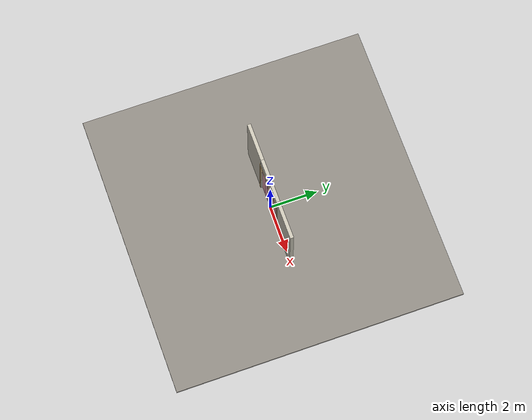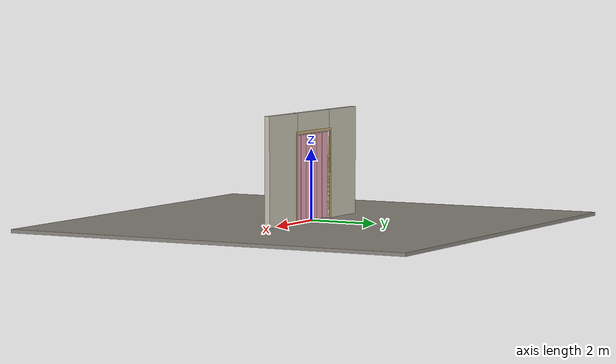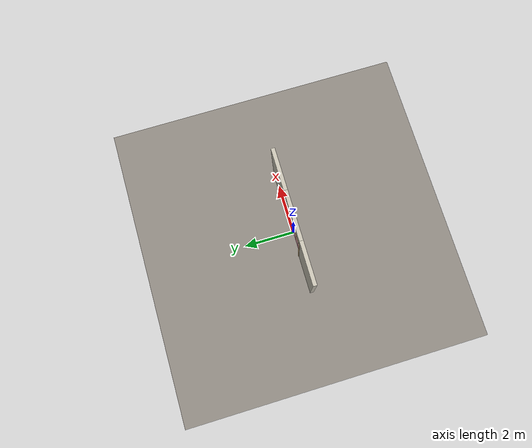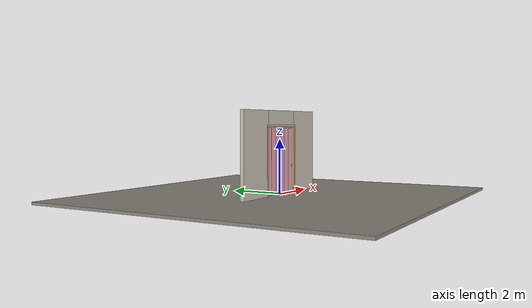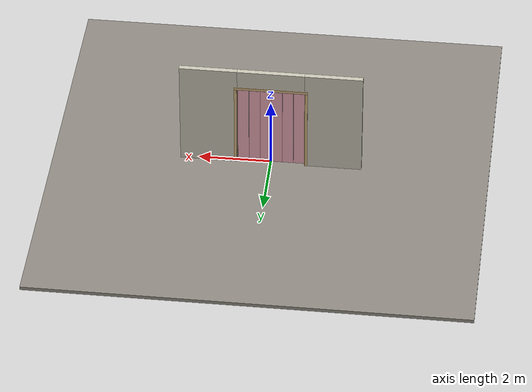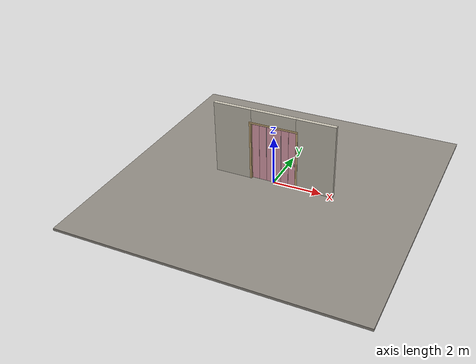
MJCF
<?xml version="1.0" ?>
<mujoco model="db0292_accordion_full">
  <compiler angle="radian" meshdir="../../hardware" texturedir="../../textures" autolimits="true" inertiafromgeom="false"/>
  <option timestep="0.002" integrator="implicitfast" cone="elliptic" impratio="10" noslip_iterations="3">
    <flag multiccd="enable"/>
  </option>
  <size memory="16M"/>
  <default>
    <geom condim="4" solref="0.005 1" solimp="0.95 0.99 0.001"/>
    <joint solreflimit="0.005 1" solimplimit="0.95 0.99 0.001"/>
    <tendon solreflimit="0.005 1"/>
    <equality solref="0.002 1"/>
  </default>
  <visual>
    <headlight ambient="0.4 0.4 0.4" diffuse="0.7 0.7 0.7" specular="0.2 0.2 0.2"/>
    <quality shadowsize="4096"/>
    <map znear="0.01" zfar="60"/>
  </visual>
  <asset>
    <material name="mat_floor" rgba="0.55 0.53 0.5 1" specular="0.2" shininess="0.15" reflectance="0"/>
    <material name="mat_wall" rgba="0.78 0.76 0.7 1" specular="0.2" shininess="0.1" reflectance="0"/>
    <material name="mat_frame" rgba="0.82 0.7 0.5 1" specular="0.2" shininess="0.45" reflectance="0"/>
    <material name="mat_track" rgba="0.8 0.81 0.83 1" specular="0.8" shininess="0.6" reflectance="0.4"/>
    <material name="mat_hinge" rgba="0.65 0.66 0.68 1" specular="0.74" shininess="0.5" reflectance="0.36"/>
    <material name="mat_panel_0_0" rgba="0.9 0.65 0.7 1" specular="0.2" shininess="0.57" reflectance="0"/>
    <material name="mat_panel_0_1" rgba="0.9 0.65 0.7 1" specular="0.2" shininess="0.57" reflectance="0"/>
    <material name="mat_panel_0_2" rgba="0.9 0.65 0.7 1" specular="0.2" shininess="0.57" reflectance="0"/>
    <material name="mat_panel_0_3" rgba="0.9 0.65 0.7 1" specular="0.2" shininess="0.57" reflectance="0"/>
    <material name="mat_panel_0_4" rgba="0.9 0.65 0.7 1" specular="0.2" shininess="0.57" reflectance="0"/>
    <material name="mat_panel_0_5" rgba="0.9 0.65 0.7 1" specular="0.2" shininess="0.57" reflectance="0"/>
    <material name="mat_op_nickel_satin" rgba="0.72 0.7 0.66 1" specular="0.8" shininess="0.65" reflectance="0.4"/>
    <texture name="skybox" type="skybox" builtin="gradient" rgb1="0.6 0.7 0.85" rgb2="0.9 0.92 0.95" width="256" height="256"/>
  </asset>
  <worldbody>
    <light name="sun" pos="1.5 -2.5 4" dir="-0.3 0.5 -0.8" directional="true" diffuse="0.8 0.8 0.8" specular="0.3 0.3 0.3" castshadow="true"/>
    <light name="fill" pos="-1.5 2.5 3" dir="0.3 -0.5 -0.7" directional="true" diffuse="0.35 0.35 0.4" castshadow="false"/>
    <camera name="robot_view" pos="0 -2.926563 2.046937" xyaxes="1 0 0 0 0.26963 0.962964" fovy="52"/>
    <camera name="far_view" pos="0 2.926563 2.046937" xyaxes="-1 0 0 0 -0.26963 0.962964" fovy="52"/>
    <camera name="iso" pos="2.224187 -2.458313 2.515188" xyaxes="0.741536 0.670913 0 -0.242917 0.268487 0.932151" fovy="46"/>
    <camera name="detail_handle" pos="1.0345 -0.806 1.28" xyaxes="0.97561 0.219512 0 -0.070934 0.315262 0.94635" fovy="38"/>
    <geom name="floor" type="box" size="6 6 0.05" pos="0 0 -0.05" material="mat_floor" group="0" contype="1" conaffinity="1" friction="0.8 0.005 0.0001" density="2400"/>
    <geom name="wall_left" type="box" size="0.78975 0.0725 1.5275" pos="-1.71025 0 1.5275" material="mat_wall" group="0" contype="1" conaffinity="1" friction="0.6 0.005 0.0001" density="800"/>
    <geom name="wall_right" type="box" size="0.78975 0.0725 1.5275" pos="1.71025 0 1.5275" material="mat_wall" group="0" contype="1" conaffinity="1" friction="0.6 0.005 0.0001" density="800"/>
    <geom name="wall_header" type="box" size="0.9205 0.0725 0.3" pos="0 0 2.755" material="mat_wall" group="0" contype="1" conaffinity="1" friction="0.6 0.005 0.0001" density="800"/>
    <geom name="jamb_hinge" type="box" size="0.0095 0.0725 1.2275" pos="-0.93 0 1.2275" material="mat_frame" group="0" contype="1" conaffinity="1" friction="0.6 0.005 0.0001" density="400"/>
    <geom name="jamb_strike" type="box" size="0.0095 0.0725 1.2275" pos="0.93 0 1.2275" material="mat_frame" group="0" contype="1" conaffinity="1" friction="0.6 0.005 0.0001" density="400"/>
    <geom name="stud_strike" type="box" size="0.015 0.0725 1.2275" pos="0.9545 0 1.2275" material="mat_wall" group="0" contype="1" conaffinity="1" friction="0.6 0.005 0.0001" density="500"/>
    <geom name="jamb_head" type="box" size="0.9545 0.0725 0.0095" pos="0.015 0 2.4645" material="mat_frame" group="0" contype="1" conaffinity="1" friction="0.6 0.005 0.0001" density="400"/>
    <geom name="head_stud" type="box" size="0.9545 0.0725 0.015" pos="0.015 0 2.489" material="mat_wall" group="0" contype="1" conaffinity="1" friction="0.6 0.005 0.0001" density="500"/>
    <geom name="casing_l_n" type="box" size="0.035 0.008 1.237" pos="-0.9695 -0.0805 1.2275" material="mat_frame" group="2" contype="0" conaffinity="0" density="400"/>
    <geom name="casing_r_n" type="box" size="0.035 0.008 1.237" pos="0.9695 -0.0805 1.2275" material="mat_frame" group="2" contype="0" conaffinity="0" density="400"/>
    <geom name="casing_h_n" type="box" size="1.0045 0.008 0.035" pos="0 -0.0805 2.504" material="mat_frame" group="2" contype="0" conaffinity="0" density="400"/>
    <geom name="casing_l_p" type="box" size="0.035 0.008 1.237" pos="-0.9695 0.0805 1.2275" material="mat_frame" group="2" contype="0" conaffinity="0" density="400"/>
    <geom name="casing_r_p" type="box" size="0.035 0.008 1.237" pos="0.9695 0.0805 1.2275" material="mat_frame" group="2" contype="0" conaffinity="0" density="400"/>
    <geom name="casing_h_p" type="box" size="1.0045 0.008 0.035" pos="0 0.0805 2.504" material="mat_frame" group="2" contype="0" conaffinity="0" density="400"/>
    <geom name="fold_track" type="box" size="0.9205 0.02 0.015" pos="0 0 2.44" material="mat_track" group="1" contype="0" conaffinity="0" density="2700"/>
    <site name="approach_point" pos="0 -1.5 0" quat="1 0 0 0" size="0.05" rgba="0.2 0.9 0.2 0.5" group="4"/>
    <site name="goal_point" pos="0 1.5 0" quat="1 0 0 0" size="0.05" rgba="0.2 0.9 0.2 0.5" group="4"/>
    <site name="door_plane_center" pos="0 0 1.2275" quat="1 0 0 0" size="0.02" rgba="0.2 0.9 0.2 0.5" group="4"/>
    <body name="panel_0_0" pos="-0.9205 0 0">
      <inertial pos="0.153575 0 1.224285" mass="9.947094" quat="0.499733 0.499733 -0.500267 0.500267" diaginertia="0.073964742 4.808677207 4.882402935"/>
      <joint name="panel_0_0_hinge" type="hinge" axis="0 0 -1" pos="0.035 0 0" limited="true" range="0 1.48353" damping="1.212749" frictionloss="9.47406" armature="0.02"/>
      <geom name="panel_0_0_slab" type="box" size="0.149 0.006 1.2" pos="0.154 0 1.22" material="mat_panel_0_0" group="0" contype="1" conaffinity="1" friction="0.4 0.005 0.0001" density="1"/>
      <geom name="panel_0_0_pivot_pin" type="cylinder" size="0.008 0.0105" pos="0.035 0 2.4205" material="mat_hinge" group="1" contype="0" conaffinity="0" density="7850"/>
      <body name="panel_0_1" pos="0.305 0 0">
        <inertial pos="0.001104 0.005957 1.22" mass="10.21769" quat="0.50736 -0.49253 0.50736 0.49253" diaginertia="0.002372935 4.823732763 4.825999917"/>
        <joint name="panel_0_1_hinge" type="hinge" axis="0 0 -1" pos="0 0.006 0" limited="true" range="-3.141593 0" damping="0.2" frictionloss="0.1" armature="0.005"/>
        <geom name="panel_0_1_slab" type="box" size="0.1505 0.006 1.2" pos="0.1525 0 1.22" material="mat_panel_0_1" group="0" contype="1" conaffinity="1" friction="0.4 0.005 0.0001" density="1"/>
        <geom name="panel_0_1_knuckle" type="cylinder" size="0.0045 1.19" pos="0 0.006 1.22" material="mat_hinge" group="1" contype="0" conaffinity="0" density="7850"/>
        <body name="panel_0_2" pos="0.305 0 0">
          <inertial pos="0.001104 -0.005957 1.22" mass="10.21769" quat="0.49253 -0.50736 0.49253 0.50736" diaginertia="0.002372935 4.823732763 4.825999917"/>
          <joint name="panel_0_2_hinge" type="hinge" axis="0 0 -1" pos="0 -0.006 0" limited="true" range="0 3.141593" damping="0.2" frictionloss="0.1" armature="0.005"/>
          <geom name="panel_0_2_slab" type="box" size="0.1505 0.006 1.2" pos="0.1525 0 1.22" material="mat_panel_0_2" group="0" contype="1" conaffinity="1" friction="0.4 0.005 0.0001" density="1"/>
          <geom name="panel_0_2_knuckle" type="cylinder" size="0.0045 1.19" pos="0 -0.006 1.22" material="mat_hinge" group="1" contype="0" conaffinity="0" density="7850"/>
          <body name="panel_0_3" pos="0.305 0 0">
            <inertial pos="0.001104 0.005957 1.22" mass="10.21769" quat="0.50736 -0.49253 0.50736 0.49253" diaginertia="0.002372935 4.823732763 4.825999917"/>
            <joint name="panel_0_3_hinge" type="hinge" axis="0 0 -1" pos="0 0.006 0" limited="true" range="-3.141593 0" damping="0.2" frictionloss="0.1" armature="0.005"/>
            <geom name="panel_0_3_slab" type="box" size="0.1505 0.006 1.2" pos="0.1525 0 1.22" material="mat_panel_0_3" group="0" contype="1" conaffinity="1" friction="0.4 0.005 0.0001" density="1"/>
            <geom name="panel_0_3_knuckle" type="cylinder" size="0.0045 1.19" pos="0 0.006 1.22" material="mat_hinge" group="1" contype="0" conaffinity="0" density="7850"/>
            <body name="panel_0_4" pos="0.305 0 0">
              <inertial pos="0.001104 -0.005957 1.22" mass="10.21769" quat="0.49253 -0.50736 0.49253 0.50736" diaginertia="0.002372935 4.823732763 4.825999917"/>
              <joint name="panel_0_4_hinge" type="hinge" axis="0 0 -1" pos="0 -0.006 0" limited="true" range="0 3.141593" damping="0.2" frictionloss="0.1" armature="0.005"/>
              <geom name="panel_0_4_slab" type="box" size="0.1505 0.006 1.2" pos="0.1525 0 1.22" material="mat_panel_0_4" group="0" contype="1" conaffinity="1" friction="0.4 0.005 0.0001" density="1"/>
              <geom name="panel_0_4_knuckle" type="cylinder" size="0.0045 1.19" pos="0 -0.006 1.22" material="mat_hinge" group="1" contype="0" conaffinity="0" density="7850"/>
              <body name="panel_0_5" pos="0.305 0 0">
                <inertial pos="0.00219 0.005904 1.219085" mass="10.457024" quat="0.490059 0.509983 0.489811 -0.509749" diaginertia="0.00527764 4.91834098 4.923509581"/>
                <joint name="panel_0_5_hinge" type="hinge" axis="0 0 -1" pos="0 0.006 0" limited="true" range="-3.141593 0" damping="0.2" frictionloss="0.1" armature="0.005"/>
                <geom name="panel_0_5_slab" type="box" size="0.154 0.006 1.2" pos="0.156 0 1.22" material="mat_panel_0_5" group="0" contype="1" conaffinity="1" friction="0.4 0.005 0.0001" density="1"/>
                <geom name="panel_0_5_knuckle" type="cylinder" size="0.0045 1.19" pos="0 0.006 1.22" material="mat_hinge" group="1" contype="0" conaffinity="0" density="7850"/>
                <geom name="panel_0_5_pull_n" type="box" size="0.025 0.0005 0.05" pos="0.25 -0.0065 1" material="mat_op_nickel_satin" group="1" contype="0" conaffinity="0" density="1000"/>
                <site name="panel_0_5_pull_grip_n" pos="0.25 -0.006 1" quat="1 0 0 0" size="0.012" rgba="0.2 0.9 0.2 0.5" group="4"/>
              </body>
            </body>
          </body>
        </body>
      </body>
    </body>
  </worldbody>
  <equality>
    <joint name="panel_0_1_couple" joint1="panel_0_1_hinge" joint2="panel_0_0_hinge" polycoef="0 -2 0 0 0" active="true"/>
    <joint name="panel_0_2_couple" joint1="panel_0_2_hinge" joint2="panel_0_0_hinge" polycoef="0 2 0 0 0" active="true"/>
    <joint name="panel_0_3_couple" joint1="panel_0_3_hinge" joint2="panel_0_0_hinge" polycoef="0 -2 0 0 0" active="true"/>
    <joint name="panel_0_4_couple" joint1="panel_0_4_hinge" joint2="panel_0_0_hinge" polycoef="0 2 0 0 0" active="true"/>
    <joint name="panel_0_5_couple" joint1="panel_0_5_hinge" joint2="panel_0_0_hinge" polycoef="0 -2 0 0 0" active="true"/>
  </equality>
  <sensor>
    <jointpos name="panel_0_0_hinge_pos" joint="panel_0_0_hinge"/>
    <jointvel name="panel_0_0_hinge_vel" joint="panel_0_0_hinge"/>
    <jointpos name="panel_0_1_hinge_pos" joint="panel_0_1_hinge"/>
    <jointvel name="panel_0_1_hinge_vel" joint="panel_0_1_hinge"/>
    <jointpos name="panel_0_2_hinge_pos" joint="panel_0_2_hinge"/>
    <jointvel name="panel_0_2_hinge_vel" joint="panel_0_2_hinge"/>
    <jointpos name="panel_0_3_hinge_pos" joint="panel_0_3_hinge"/>
    <jointvel name="panel_0_3_hinge_vel" joint="panel_0_3_hinge"/>
    <jointpos name="panel_0_4_hinge_pos" joint="panel_0_4_hinge"/>
    <jointvel name="panel_0_4_hinge_vel" joint="panel_0_4_hinge"/>
    <jointpos name="panel_0_5_hinge_pos" joint="panel_0_5_hinge"/>
    <jointvel name="panel_0_5_hinge_vel" joint="panel_0_5_hinge"/>
  </sensor>
</mujoco>
